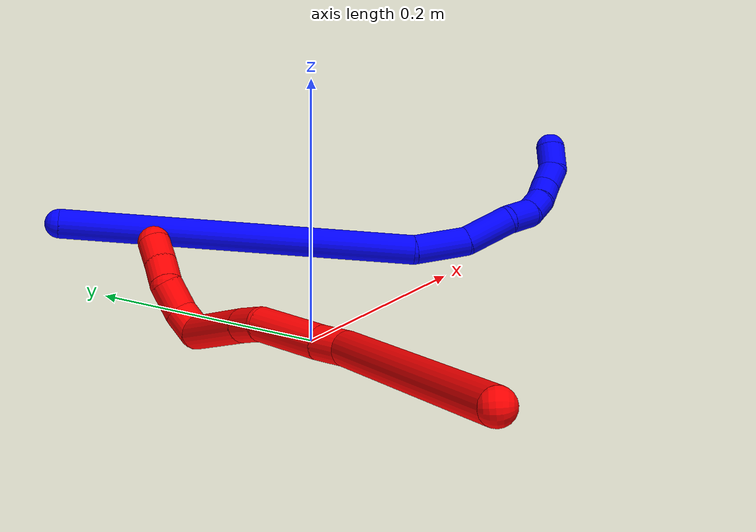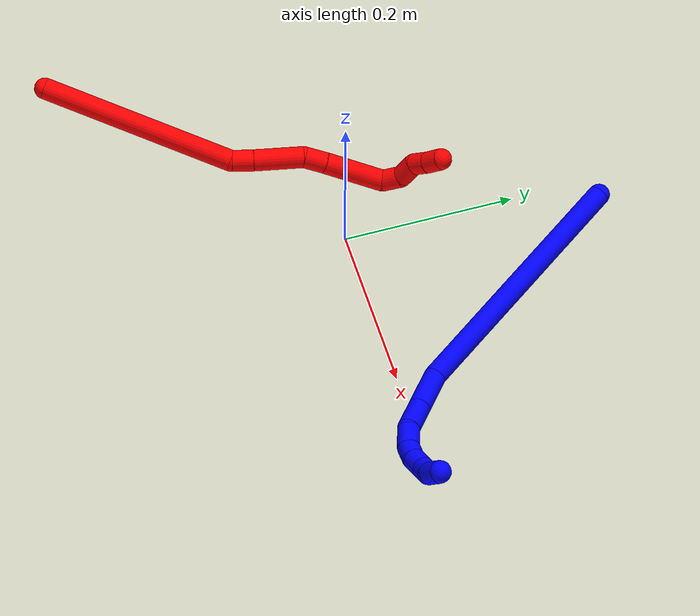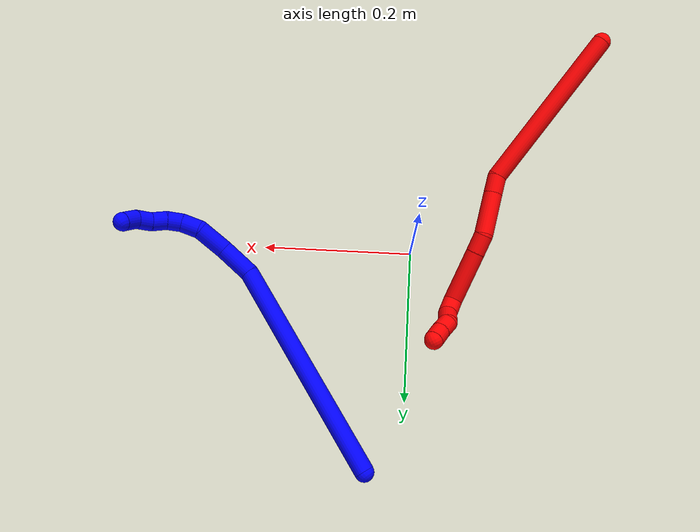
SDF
<sdf version="1.7">
 <world name="default">
  <plugin name="TubeGeneratorPlugin" filename="libtube_generator_plugin.so"/>
  <model name="photoneo_s_sensor">
   <static>1</static>
   <pose>0 0 2 1.57079 1.57079 3.14159</pose>
   <link name="link">
    <inertial><mass>0.1</mass></inertial>
    <sensor name="sensor" type="depth">
     <update_rate>30</update_rate>
     <camera>
      <horizontal_fov>1.22</horizontal_fov>
      <image><width>1920</width><height>1200</height><format>B8G8R8</format></image>
      <clip><near>0.1</near><far>4</far></clip>
      <depth_camera><output>points</output></depth_camera>
     </camera>
     <plugin name="camera_plugin" filename="libgazebo_ros_depth_camera.so">
      <baseline>0.2</baseline>
      <alwaysOn>1</alwaysOn>
      <updateRate>0.0</updateRate>
      <cameraName>camera_ir</cameraName>
      <imageTopicName>/camera/color/image_raw</imageTopicName>
      <cameraInfoTopicName>/camera/color/camera_info</cameraInfoTopicName>
      <depthImageTopicName>/camera/depth/image_raw</depthImageTopicName>
      <depthImageCameraInfoTopicName>/camera/depth/camera_info</depthImageCameraInfoTopicName>
      <pointCloudTopicName>/camera/depth/points</pointCloudTopicName>
      <frameName>fr_optical</frameName>
      <pointCloudCutoff>0.1</pointCloudCutoff>
      <pointCloudCutoffMax>2.0</pointCloudCutoffMax>
      <distortionK1>0</distortionK1>
      <distortionK2>0</distortionK2>
      <distortionK3>0</distortionK3>
      <distortionT1>0</distortionT1>
      <distortionT2>0</distortionT2>
      <CxPrime>0</CxPrime>
      <Cx>0</Cx>
      <Cy>0</Cy>
      <focalLength>0</focalLength>
      <hackBaseline>0</hackBaseline>
     </plugin>
    </sensor>
   </link>
  </model>
  <gravity>0 0 -9.8</gravity>
  <magnetic_field>6e-06 2.3e-05 -4.2e-05</magnetic_field>
  <atmosphere type="adiabatic"/>
  <physics name="default_physics" default="0" type="ode">
   <max_step_size>0.003</max_step_size>
   <real_time_factor>1</real_time_factor>
   <real_time_update_rate>1000</real_time_update_rate>
   <max_contacts>10000</max_contacts>
   <ode>
    <solver>
     <type>quick</type>
     <iters>100</iters>
     <sor>1.3</sor>
     <use_dynamic_moi_rescaling>0</use_dynamic_moi_rescaling>
    </solver>
    <constraints>
     <contact_max_correcting_vel>0</contact_max_correcting_vel>
     <contact_surface_layer>0.001</contact_surface_layer>
     <cfm>0</cfm>
     <erp>0.2</erp>
    </constraints>
   </ode>
  </physics>
  <scene><ambient>0.4 0.4 0.4 1</ambient><background>0.7 0.7 0.7 1</background><shadows>0</shadows></scene>
  <audio><device>default</device></audio>
  <spherical_coordinates>
   <surface_model>EARTH_WGS84</surface_model>
   <latitude_deg>0</latitude_deg>
   <longitude_deg>0</longitude_deg>
   <elevation>0</elevation>
   <heading_deg>0</heading_deg>
  </spherical_coordinates>
  <model name="bin">
   <static>1</static>
   <link name="bottom">
    <collision name="collision-bottom">
     <pose>0 0 -0.01 0 -0 0</pose>
     <geometry><box><size>0.8 0.6 0.02</size></box></geometry>
     <surface>
      <friction><ode><mu>100</mu><mu2>100</mu2></ode></friction>
      <contact><collide_bitmask>65535</collide_bitmask></contact>
     </surface>
    </collision>
   </link>
   <link name="west_wall">
    <collision name="collision-west_wall">
     <pose>-0.41 0 0.1 0 -0 0</pose>
     <geometry><box><size>0.02 0.6 0.2</size></box></geometry>
     <surface>
      <friction><ode><mu>100</mu><mu2>100</mu2></ode></friction>
      <contact><collide_bitmask>65535</collide_bitmask></contact>
     </surface>
    </collision>
   </link>
   <link name="east_wall">
    <collision name="collision-east_wall">
     <pose>0.41 0 0.1 0 -0 0</pose>
     <geometry><box><size>0.02 0.6 0.2</size></box></geometry>
     <surface>
      <friction><ode><mu>100</mu><mu2>100</mu2></ode></friction>
      <contact><collide_bitmask>65535</collide_bitmask></contact>
     </surface>
    </collision>
   </link>
   <link name="south_wall">
    <collision name="collision-south_wall">
     <pose>0 -0.31 0.1 0 -0 0</pose>
     <geometry><box><size>0.8 0.02 0.2</size></box></geometry>
     <surface>
      <friction><ode><mu>100</mu><mu2>100</mu2></ode></friction>
      <contact><collide_bitmask>65535</collide_bitmask></contact>
     </surface>
    </collision>
   </link>
   <link name="north_wall">
    <collision name="collision-north_wall">
     <pose>0 0.31 0.1 0 -0 0</pose>
     <geometry><box><size>0.8 0.02 0.2</size></box></geometry>
     <surface>
      <friction><ode><mu>100</mu><mu2>100</mu2></ode></friction>
      <contact><collide_bitmask>65535</collide_bitmask></contact>
     </surface>
    </collision>
   </link>
  </model>
  <model name="1">
   <static>0</static>
   <link name="1">
    <collision name="collision-cylinder-e_1_1_4">
     <pose>0.022875 -0.004551 0.149012 0.030534 0.152254 0.002329</pose>
     <geometry><cylinder><radius>0.0125</radius><length>0.301653</length></cylinder></geometry>
     <surface>
      <friction><ode><mu>1.16</mu><mu2>1.16</mu2><slip1>0</slip1><slip2>0</slip2></ode></friction>
      <contact><ode><kp>1e+06</kp><kd>1</kd><max_vel>0</max_vel><min_depth>0.001</min_depth></ode></contact>
     </surface>
    </collision>
    <visual name="visual-cylinder-e_1_1_4">
     <pose>0.022875 -0.004551 0.149012 0.030534 0.152254 0.002329</pose>
     <geometry><cylinder><radius>0.0125</radius><length>0.301653</length></cylinder></geometry>
     <material><ambient>0 0 1 1</ambient></material>
    </visual>
    <collision name="collision-cylinder-e_2_4_5">
     <pose>0.046559 -0.017007 0.320448 0.338899 0.034003 0.005818</pose>
     <geometry><cylinder><radius>0.0125</radius><length>0.047581</length></cylinder></geometry>
     <surface>
      <friction><ode><mu>1.16</mu><mu2>1.16</mu2><slip1>0</slip1><slip2>0</slip2></ode></friction>
      <contact><ode><kp>1e+06</kp><kd>1</kd><max_vel>0</max_vel><min_depth>0.001</min_depth></ode></contact>
     </surface>
    </collision>
    <visual name="visual-cylinder-e_2_4_5">
     <pose>0.046559 -0.017007 0.320448 0.338899 0.034003 0.005818</pose>
     <geometry><cylinder><radius>0.0125</radius><length>0.047581</length></cylinder></geometry>
     <material><ambient>0 0 1 1</ambient></material>
    </visual>
    <collision name="collision-cylinder-e_3_5_6">
     <pose>0.050769 -0.036777 0.359879 0.609169 0.162558 0.051204</pose>
     <geometry><cylinder><radius>0.0125</radius><length>0.042026</length></cylinder></geometry>
     <surface>
      <friction><ode><mu>1.16</mu><mu2>1.16</mu2><slip1>0</slip1><slip2>0</slip2></ode></friction>
      <contact><ode><kp>1e+06</kp><kd>1</kd><max_vel>0</max_vel><min_depth>0.001</min_depth></ode></contact>
     </surface>
    </collision>
    <visual name="visual-cylinder-e_3_5_6">
     <pose>0.050769 -0.036777 0.359879 0.609169 0.162558 0.051204</pose>
     <geometry><cylinder><radius>0.0125</radius><length>0.042026</length></cylinder></geometry>
     <material><ambient>0 0 1 1</ambient></material>
    </visual>
    <collision name="collision-cylinder-e_4_6_7">
     <pose>0.050803 -0.055544 0.387421 0.579934 -0.261219 -0.078348</pose>
     <geometry><cylinder><radius>0.0125</radius><length>0.026076</length></cylinder></geometry>
     <surface>
      <friction><ode><mu>1.16</mu><mu2>1.16</mu2><slip1>0</slip1><slip2>0</slip2></ode></friction>
      <contact><ode><kp>1e+06</kp><kd>1</kd><max_vel>0</max_vel><min_depth>0.001</min_depth></ode></contact>
     </surface>
    </collision>
    <visual name="visual-cylinder-e_4_6_7">
     <pose>0.050803 -0.055544 0.387421 0.579934 -0.261219 -0.078348</pose>
     <geometry><cylinder><radius>0.0125</radius><length>0.026076</length></cylinder></geometry>
     <material><ambient>0 0 1 1</ambient></material>
    </visual>
    <collision name="collision-cylinder-e_5_7_8">
     <pose>0.045085 -0.070652 0.403243 0.998613 -0.236307 -0.129305</pose>
     <geometry><cylinder><radius>0.0125</radius><length>0.02008</length></cylinder></geometry>
     <surface>
      <friction><ode><mu>1.16</mu><mu2>1.16</mu2><slip1>0</slip1><slip2>0</slip2></ode></friction>
      <contact><ode><kp>1e+06</kp><kd>1</kd><max_vel>0</max_vel><min_depth>0.001</min_depth></ode></contact>
     </surface>
    </collision>
    <visual name="visual-cylinder-e_5_7_8">
     <pose>0.045085 -0.070652 0.403243 0.998613 -0.236307 -0.129305</pose>
     <geometry><cylinder><radius>0.0125</radius><length>0.02008</length></cylinder></geometry>
     <material><ambient>0 0 1 1</ambient></material>
    </visual>
    <collision name="collision-cylinder-e_6_8_9">
     <pose>0.039168 -0.087905 0.411668 1.23674 -0.356486 -0.254952</pose>
     <geometry><cylinder><radius>0.0125</radius><length>0.020438</length></cylinder></geometry>
     <surface>
      <friction><ode><mu>1.16</mu><mu2>1.16</mu2><slip1>0</slip1><slip2>0</slip2></ode></friction>
      <contact><ode><kp>1e+06</kp><kd>1</kd><max_vel>0</max_vel><min_depth>0.001</min_depth></ode></contact>
     </surface>
    </collision>
    <visual name="visual-cylinder-e_6_8_9">
     <pose>0.039168 -0.087905 0.411668 1.23674 -0.356486 -0.254952</pose>
     <geometry><cylinder><radius>0.0125</radius><length>0.020438</length></cylinder></geometry>
     <material><ambient>0 0 1 1</ambient></material>
    </visual>
    <collision name="collision-cylinder-e_7_9_10">
     <pose>0.035431 -0.106722 0.418183 1.23814 -0.016588 -0.011819</pose>
     <geometry><cylinder><radius>0.0125</radius><length>0.020676</length></cylinder></geometry>
     <surface>
      <friction><ode><mu>1.16</mu><mu2>1.16</mu2><slip1>0</slip1><slip2>0</slip2></ode></friction>
      <contact><ode><kp>1e+06</kp><kd>1</kd><max_vel>0</max_vel><min_depth>0.001</min_depth></ode></contact>
     </surface>
    </collision>
    <visual name="visual-cylinder-e_7_9_10">
     <pose>0.035431 -0.106722 0.418183 1.23814 -0.016588 -0.011819</pose>
     <geometry><cylinder><radius>0.0125</radius><length>0.020676</length></cylinder></geometry>
     <material><ambient>0 0 1 1</ambient></material>
    </visual>
    <collision name="collision-cylinder-e_8_10_2">
     <pose>0.035283 -0.127132 0.420135 1.70378 0.002193 0.002506</pose>
     <geometry><cylinder><radius>0.0125</radius><length>0.021471</length></cylinder></geometry>
     <surface>
      <friction><ode><mu>1.16</mu><mu2>1.16</mu2><slip1>0</slip1><slip2>0</slip2></ode></friction>
      <contact><ode><kp>1e+06</kp><kd>1</kd><max_vel>0</max_vel><min_depth>0.001</min_depth></ode></contact>
     </surface>
    </collision>
    <visual name="visual-cylinder-e_8_10_2">
     <pose>0.035283 -0.127132 0.420135 1.70378 0.002193 0.002506</pose>
     <geometry><cylinder><radius>0.0125</radius><length>0.021471</length></cylinder></geometry>
     <material><ambient>0 0 1 1</ambient></material>
    </visual>
    <collision name="collision-sphere-2">
     <pose>0.035306 -0.137773 0.418712 0 -0 0</pose>
     <geometry><sphere><radius>0.0125</radius></sphere></geometry>
     <surface>
      <friction><ode><mu>1.16</mu><mu2>1.16</mu2><slip1>0</slip1><slip2>0</slip2></ode></friction>
      <contact><ode><kp>1e+06</kp><kd>1</kd><max_vel>0</max_vel><min_depth>0.001</min_depth></ode></contact>
     </surface>
    </collision>
    <visual name="visual-sphere-2">
     <pose>0.035306 -0.137773 0.418712 0 -0 0</pose>
     <geometry><sphere><radius>0.0125</radius></sphere></geometry>
     <material><ambient>0 0 1 1</ambient></material>
    </visual>
    <collision name="collision-sphere-10">
     <pose>0.035259 -0.116492 0.421559 0 -0 0</pose>
     <geometry><sphere><radius>0.0125</radius></sphere></geometry>
     <surface>
      <friction><ode><mu>1.16</mu><mu2>1.16</mu2><slip1>0</slip1><slip2>0</slip2></ode></friction>
      <contact><ode><kp>1e+06</kp><kd>1</kd><max_vel>0</max_vel><min_depth>0.001</min_depth></ode></contact>
     </surface>
    </collision>
    <visual name="visual-sphere-10">
     <pose>0.035259 -0.116492 0.421559 0 -0 0</pose>
     <geometry><sphere><radius>0.0125</radius></sphere></geometry>
     <material><ambient>0 0 1 1</ambient></material>
    </visual>
    <collision name="collision-sphere-9">
     <pose>0.035602 -0.096952 0.414808 0 -0 0</pose>
     <geometry><sphere><radius>0.0125</radius></sphere></geometry>
     <surface>
      <friction><ode><mu>1.16</mu><mu2>1.16</mu2><slip1>0</slip1><slip2>0</slip2></ode></friction>
      <contact><ode><kp>1e+06</kp><kd>1</kd><max_vel>0</max_vel><min_depth>0.001</min_depth></ode></contact>
     </surface>
    </collision>
    <visual name="visual-sphere-9">
     <pose>0.035602 -0.096952 0.414808 0 -0 0</pose>
     <geometry><sphere><radius>0.0125</radius></sphere></geometry>
     <material><ambient>0 0 1 1</ambient></material>
    </visual>
    <collision name="collision-sphere-4">
     <pose>0.045751 -0.009103 0.298024 0 -0 0</pose>
     <geometry><sphere><radius>0.0125</radius></sphere></geometry>
     <surface>
      <friction><ode><mu>1.16</mu><mu2>1.16</mu2><slip1>0</slip1><slip2>0</slip2></ode></friction>
      <contact><ode><kp>1e+06</kp><kd>1</kd><max_vel>0</max_vel><min_depth>0.001</min_depth></ode></contact>
     </surface>
    </collision>
    <visual name="visual-sphere-4">
     <pose>0.045751 -0.009103 0.298024 0 -0 0</pose>
     <geometry><sphere><radius>0.0125</radius></sphere></geometry>
     <material><ambient>0 0 1 1</ambient></material>
    </visual>
    <collision name="collision-sphere-1">
     <geometry><sphere><radius>0.0125</radius></sphere></geometry>
     <surface>
      <friction><ode><mu>1.16</mu><mu2>1.16</mu2><slip1>0</slip1><slip2>0</slip2></ode></friction>
      <contact><ode><kp>1e+06</kp><kd>1</kd><max_vel>0</max_vel><min_depth>0.001</min_depth></ode></contact>
     </surface>
    </collision>
    <visual name="visual-sphere-1">
     <geometry><sphere><radius>0.0125</radius></sphere></geometry>
     <material><ambient>0 0 1 1</ambient></material>
    </visual>
    <collision name="collision-sphere-8">
     <pose>0.042735 -0.078858 0.408528 0 -0 0</pose>
     <geometry><sphere><radius>0.0125</radius></sphere></geometry>
     <surface>
      <friction><ode><mu>1.16</mu><mu2>1.16</mu2><slip1>0</slip1><slip2>0</slip2></ode></friction>
      <contact><ode><kp>1e+06</kp><kd>1</kd><max_vel>0</max_vel><min_depth>0.001</min_depth></ode></contact>
     </surface>
    </collision>
    <visual name="visual-sphere-8">
     <pose>0.042735 -0.078858 0.408528 0 -0 0</pose>
     <geometry><sphere><radius>0.0125</radius></sphere></geometry>
     <material><ambient>0 0 1 1</ambient></material>
    </visual>
    <collision name="collision-sphere-5">
     <pose>0.047368 -0.024912 0.342872 0 -0 0</pose>
     <geometry><sphere><radius>0.0125</radius></sphere></geometry>
     <surface>
      <friction><ode><mu>1.16</mu><mu2>1.16</mu2><slip1>0</slip1><slip2>0</slip2></ode></friction>
      <contact><ode><kp>1e+06</kp><kd>1</kd><max_vel>0</max_vel><min_depth>0.001</min_depth></ode></contact>
     </surface>
    </collision>
    <visual name="visual-sphere-5">
     <pose>0.047368 -0.024912 0.342872 0 -0 0</pose>
     <geometry><sphere><radius>0.0125</radius></sphere></geometry>
     <material><ambient>0 0 1 1</ambient></material>
    </visual>
    <collision name="collision-sphere-6">
     <pose>0.05417 -0.048642 0.376885 0 -0 0</pose>
     <geometry><sphere><radius>0.0125</radius></sphere></geometry>
     <surface>
      <friction><ode><mu>1.16</mu><mu2>1.16</mu2><slip1>0</slip1><slip2>0</slip2></ode></friction>
      <contact><ode><kp>1e+06</kp><kd>1</kd><max_vel>0</max_vel><min_depth>0.001</min_depth></ode></contact>
     </surface>
    </collision>
    <visual name="visual-sphere-6">
     <pose>0.05417 -0.048642 0.376885 0 -0 0</pose>
     <geometry><sphere><radius>0.0125</radius></sphere></geometry>
     <material><ambient>0 0 1 1</ambient></material>
    </visual>
    <collision name="collision-sphere-7">
     <pose>0.047436 -0.062446 0.397958 0 -0 0</pose>
     <geometry><sphere><radius>0.0125</radius></sphere></geometry>
     <surface>
      <friction><ode><mu>1.16</mu><mu2>1.16</mu2><slip1>0</slip1><slip2>0</slip2></ode></friction>
      <contact><ode><kp>1e+06</kp><kd>1</kd><max_vel>0</max_vel><min_depth>0.001</min_depth></ode></contact>
     </surface>
    </collision>
    <visual name="visual-sphere-7">
     <pose>0.047436 -0.062446 0.397958 0 -0 0</pose>
     <geometry><sphere><radius>0.0125</radius></sphere></geometry>
     <material><ambient>0 0 1 1</ambient></material>
    </visual>
    <inertial>
     <pose>0.03154 -0.026655 0.239203 0 -0 0</pose>
     <mass>0.5</mass>
     <inertia>
      <ixx>0.002307</ixx>
      <ixy>0</ixy>
      <ixz>0</ixz>
      <iyy>0.002313</iyy>
      <iyz>0</iyz>
      <izz>-0.000232</izz>
     </inertia>
    </inertial>
   </link>
   <pose>0.047559 0.288502 0.035997 -1.83698 -0.699103 -2.27717</pose>
  </model>
  <model name="2">
   <static>0</static>
   <link name="2">
    <collision name="collision-cylinder-e_1_1_4">
     <pose>0.048875 0.090935 -0.051813 -2.0887 0.436893 -0.729751</pose>
     <geometry><cylinder><radius>0.0125</radius><length>0.231019</length></cylinder></geometry>
     <surface>
      <friction><ode><mu>1.16</mu><mu2>1.16</mu2><slip1>0</slip1><slip2>0</slip2></ode></friction>
      <contact><ode><kp>1e+06</kp><kd>1</kd><max_vel>0</max_vel><min_depth>0.001</min_depth></ode></contact>
     </surface>
    </collision>
    <visual name="visual-cylinder-e_1_1_4">
     <pose>0.048875 0.090935 -0.051813 -2.0887 0.436893 -0.729751</pose>
     <geometry><cylinder><radius>0.0125</radius><length>0.231019</length></cylinder></geometry>
     <material><ambient>1 0 0 1</ambient></material>
    </visual>
    <collision name="collision-cylinder-e_2_4_5">
     <pose>0.100491 0.189483 -0.113364 -2.47803 0.218173 -0.615591</pose>
     <geometry><cylinder><radius>0.0125</radius><length>0.025322</length></cylinder></geometry>
     <surface>
      <friction><ode><mu>1.16</mu><mu2>1.16</mu2><slip1>0</slip1><slip2>0</slip2></ode></friction>
      <contact><ode><kp>1e+06</kp><kd>1</kd><max_vel>0</max_vel><min_depth>0.001</min_depth></ode></contact>
     </surface>
    </collision>
    <visual name="visual-cylinder-e_2_4_5">
     <pose>0.100491 0.189483 -0.113364 -2.47803 0.218173 -0.615591</pose>
     <geometry><cylinder><radius>0.0125</radius><length>0.025322</length></cylinder></geometry>
     <material><ambient>1 0 0 1</ambient></material>
    </visual>
    <collision name="collision-cylinder-e_3_5_6">
     <pose>0.107824 0.215211 -0.145572 -2.46311 0.157804 -0.440836</pose>
     <geometry><cylinder><radius>0.0125</radius><length>0.058452</length></cylinder></geometry>
     <surface>
      <friction><ode><mu>1.16</mu><mu2>1.16</mu2><slip1>0</slip1><slip2>0</slip2></ode></friction>
      <contact><ode><kp>1e+06</kp><kd>1</kd><max_vel>0</max_vel><min_depth>0.001</min_depth></ode></contact>
     </surface>
    </collision>
    <visual name="visual-cylinder-e_3_5_6">
     <pose>0.107824 0.215211 -0.145572 -2.46311 0.157804 -0.440836</pose>
     <geometry><cylinder><radius>0.0125</radius><length>0.058452</length></cylinder></geometry>
     <material><ambient>1 0 0 1</ambient></material>
    </visual>
    <collision name="collision-cylinder-e_4_6_7">
     <pose>0.118595 0.241205 -0.176163 -2.37123 0.499798 -1.12371</pose>
     <geometry><cylinder><radius>0.0125</radius><length>0.025783</length></cylinder></geometry>
     <surface>
      <friction><ode><mu>1.16</mu><mu2>1.16</mu2><slip1>0</slip1><slip2>0</slip2></ode></friction>
      <contact><ode><kp>1e+06</kp><kd>1</kd><max_vel>0</max_vel><min_depth>0.001</min_depth></ode></contact>
     </surface>
    </collision>
    <visual name="visual-cylinder-e_4_6_7">
     <pose>0.118595 0.241205 -0.176163 -2.37123 0.499798 -1.12371</pose>
     <geometry><cylinder><radius>0.0125</radius><length>0.025783</length></cylinder></geometry>
     <material><ambient>1 0 0 1</ambient></material>
    </visual>
    <collision name="collision-cylinder-e_5_7_8">
     <pose>0.143115 0.270148 -0.206386 -2.38026 0.540943 -1.21181</pose>
     <geometry><cylinder><radius>0.0125</radius><length>0.071237</length></cylinder></geometry>
     <surface>
      <friction><ode><mu>1.16</mu><mu2>1.16</mu2><slip1>0</slip1><slip2>0</slip2></ode></friction>
      <contact><ode><kp>1e+06</kp><kd>1</kd><max_vel>0</max_vel><min_depth>0.001</min_depth></ode></contact>
     </surface>
    </collision>
    <visual name="visual-cylinder-e_5_7_8">
     <pose>0.143115 0.270148 -0.206386 -2.38026 0.540943 -1.21181</pose>
     <geometry><cylinder><radius>0.0125</radius><length>0.071237</length></cylinder></geometry>
     <material><ambient>1 0 0 1</ambient></material>
    </visual>
    <collision name="collision-cylinder-e_6_8_9">
     <pose>0.158991 0.300504 -0.234831 -2.16968 -0.2157 0.404353</pose>
     <geometry><cylinder><radius>0.0125</radius><length>0.023032</length></cylinder></geometry>
     <surface>
      <friction><ode><mu>1.16</mu><mu2>1.16</mu2><slip1>0</slip1><slip2>0</slip2></ode></friction>
      <contact><ode><kp>1e+06</kp><kd>1</kd><max_vel>0</max_vel><min_depth>0.001</min_depth></ode></contact>
     </surface>
    </collision>
    <visual name="visual-cylinder-e_6_8_9">
     <pose>0.158991 0.300504 -0.234831 -2.16968 -0.2157 0.404353</pose>
     <geometry><cylinder><radius>0.0125</radius><length>0.023032</length></cylinder></geometry>
     <material><ambient>1 0 0 1</ambient></material>
    </visual>
    <collision name="collision-cylinder-e_7_9_10">
     <pose>0.148061 0.317233 -0.246509 -2.19317 -0.746355 1.30328</pose>
     <geometry><cylinder><radius>0.0125</radius><length>0.024938</length></cylinder></geometry>
     <surface>
      <friction><ode><mu>1.16</mu><mu2>1.16</mu2><slip1>0</slip1><slip2>0</slip2></ode></friction>
      <contact><ode><kp>1e+06</kp><kd>1</kd><max_vel>0</max_vel><min_depth>0.001</min_depth></ode></contact>
     </surface>
    </collision>
    <visual name="visual-cylinder-e_7_9_10">
     <pose>0.148061 0.317233 -0.246509 -2.19317 -0.746355 1.30328</pose>
     <geometry><cylinder><radius>0.0125</radius><length>0.024938</length></cylinder></geometry>
     <material><ambient>1 0 0 1</ambient></material>
    </visual>
    <collision name="collision-cylinder-e_8_10_11">
     <pose>0.136541 0.33381 -0.254528 -1.85628 -0.310242 0.41182</pose>
     <geometry><cylinder><radius>0.0125</radius><length>0.020005</length></cylinder></geometry>
     <surface>
      <friction><ode><mu>1.16</mu><mu2>1.16</mu2><slip1>0</slip1><slip2>0</slip2></ode></friction>
      <contact><ode><kp>1e+06</kp><kd>1</kd><max_vel>0</max_vel><min_depth>0.001</min_depth></ode></contact>
     </surface>
    </collision>
    <visual name="visual-cylinder-e_8_10_11">
     <pose>0.136541 0.33381 -0.254528 -1.85628 -0.310242 0.41182</pose>
     <geometry><cylinder><radius>0.0125</radius><length>0.020005</length></cylinder></geometry>
     <material><ambient>1 0 0 1</ambient></material>
    </visual>
    <collision name="collision-cylinder-e_9_11_2">
     <pose>0.129689 0.351805 -0.260258 -1.9023 -0.385344 0.533901</pose>
     <geometry><cylinder><radius>0.0125</radius><length>0.020212</length></cylinder></geometry>
     <surface>
      <friction><ode><mu>1.16</mu><mu2>1.16</mu2><slip1>0</slip1><slip2>0</slip2></ode></friction>
      <contact><ode><kp>1e+06</kp><kd>1</kd><max_vel>0</max_vel><min_depth>0.001</min_depth></ode></contact>
     </surface>
    </collision>
    <visual name="visual-cylinder-e_9_11_2">
     <pose>0.129689 0.351805 -0.260258 -1.9023 -0.385344 0.533901</pose>
     <geometry><cylinder><radius>0.0125</radius><length>0.020212</length></cylinder></geometry>
     <material><ambient>1 0 0 1</ambient></material>
    </visual>
    <collision name="collision-sphere-2">
     <pose>0.12589 0.36066 -0.263306 0 -0 0</pose>
     <geometry><sphere><radius>0.0125</radius></sphere></geometry>
     <surface>
      <friction><ode><mu>1.16</mu><mu2>1.16</mu2><slip1>0</slip1><slip2>0</slip2></ode></friction>
      <contact><ode><kp>1e+06</kp><kd>1</kd><max_vel>0</max_vel><min_depth>0.001</min_depth></ode></contact>
     </surface>
    </collision>
    <visual name="visual-sphere-2">
     <pose>0.12589 0.36066 -0.263306 0 -0 0</pose>
     <geometry><sphere><radius>0.0125</radius></sphere></geometry>
     <material><ambient>1 0 0 1</ambient></material>
    </visual>
    <collision name="collision-sphere-11">
     <pose>0.133487 0.34295 -0.25721 0 -0 0</pose>
     <geometry><sphere><radius>0.0125</radius></sphere></geometry>
     <surface>
      <friction><ode><mu>1.16</mu><mu2>1.16</mu2><slip1>0</slip1><slip2>0</slip2></ode></friction>
      <contact><ode><kp>1e+06</kp><kd>1</kd><max_vel>0</max_vel><min_depth>0.001</min_depth></ode></contact>
     </surface>
    </collision>
    <visual name="visual-sphere-11">
     <pose>0.133487 0.34295 -0.25721 0 -0 0</pose>
     <geometry><sphere><radius>0.0125</radius></sphere></geometry>
     <material><ambient>1 0 0 1</ambient></material>
    </visual>
    <collision name="collision-sphere-10">
     <pose>0.139595 0.324671 -0.251845 0 -0 0</pose>
     <geometry><sphere><radius>0.0125</radius></sphere></geometry>
     <surface>
      <friction><ode><mu>1.16</mu><mu2>1.16</mu2><slip1>0</slip1><slip2>0</slip2></ode></friction>
      <contact><ode><kp>1e+06</kp><kd>1</kd><max_vel>0</max_vel><min_depth>0.001</min_depth></ode></contact>
     </surface>
    </collision>
    <visual name="visual-sphere-10">
     <pose>0.139595 0.324671 -0.251845 0 -0 0</pose>
     <geometry><sphere><radius>0.0125</radius></sphere></geometry>
     <material><ambient>1 0 0 1</ambient></material>
    </visual>
    <collision name="collision-sphere-9">
     <pose>0.156527 0.309795 -0.241172 0 -0 0</pose>
     <geometry><sphere><radius>0.0125</radius></sphere></geometry>
     <surface>
      <friction><ode><mu>1.16</mu><mu2>1.16</mu2><slip1>0</slip1><slip2>0</slip2></ode></friction>
      <contact><ode><kp>1e+06</kp><kd>1</kd><max_vel>0</max_vel><min_depth>0.001</min_depth></ode></contact>
     </surface>
    </collision>
    <visual name="visual-sphere-9">
     <pose>0.156527 0.309795 -0.241172 0 -0 0</pose>
     <geometry><sphere><radius>0.0125</radius></sphere></geometry>
     <material><ambient>1 0 0 1</ambient></material>
    </visual>
    <collision name="collision-sphere-4">
     <pose>0.09775 0.181869 -0.103626 0 -0 0</pose>
     <geometry><sphere><radius>0.0125</radius></sphere></geometry>
     <surface>
      <friction><ode><mu>1.16</mu><mu2>1.16</mu2><slip1>0</slip1><slip2>0</slip2></ode></friction>
      <contact><ode><kp>1e+06</kp><kd>1</kd><max_vel>0</max_vel><min_depth>0.001</min_depth></ode></contact>
     </surface>
    </collision>
    <visual name="visual-sphere-4">
     <pose>0.09775 0.181869 -0.103626 0 -0 0</pose>
     <geometry><sphere><radius>0.0125</radius></sphere></geometry>
     <material><ambient>1 0 0 1</ambient></material>
    </visual>
    <collision name="collision-sphere-1">
     <geometry><sphere><radius>0.0125</radius></sphere></geometry>
     <surface>
      <friction><ode><mu>1.16</mu><mu2>1.16</mu2><slip1>0</slip1><slip2>0</slip2></ode></friction>
      <contact><ode><kp>1e+06</kp><kd>1</kd><max_vel>0</max_vel><min_depth>0.001</min_depth></ode></contact>
     </surface>
    </collision>
    <visual name="visual-sphere-1">
     <geometry><sphere><radius>0.0125</radius></sphere></geometry>
     <material><ambient>1 0 0 1</ambient></material>
    </visual>
    <collision name="collision-sphere-8">
     <pose>0.161456 0.291213 -0.228489 0 -0 0</pose>
     <geometry><sphere><radius>0.0125</radius></sphere></geometry>
     <surface>
      <friction><ode><mu>1.16</mu><mu2>1.16</mu2><slip1>0</slip1><slip2>0</slip2></ode></friction>
      <contact><ode><kp>1e+06</kp><kd>1</kd><max_vel>0</max_vel><min_depth>0.001</min_depth></ode></contact>
     </surface>
    </collision>
    <visual name="visual-sphere-8">
     <pose>0.161456 0.291213 -0.228489 0 -0 0</pose>
     <geometry><sphere><radius>0.0125</radius></sphere></geometry>
     <material><ambient>1 0 0 1</ambient></material>
    </visual>
    <collision name="collision-sphere-5">
     <pose>0.103231 0.197096 -0.123102 0 -0 0</pose>
     <geometry><sphere><radius>0.0125</radius></sphere></geometry>
     <surface>
      <friction><ode><mu>1.16</mu><mu2>1.16</mu2><slip1>0</slip1><slip2>0</slip2></ode></friction>
      <contact><ode><kp>1e+06</kp><kd>1</kd><max_vel>0</max_vel><min_depth>0.001</min_depth></ode></contact>
     </surface>
    </collision>
    <visual name="visual-sphere-5">
     <pose>0.103231 0.197096 -0.123102 0 -0 0</pose>
     <geometry><sphere><radius>0.0125</radius></sphere></geometry>
     <material><ambient>1 0 0 1</ambient></material>
    </visual>
    <collision name="collision-sphere-6">
     <pose>0.112417 0.233325 -0.168043 0 -0 0</pose>
     <geometry><sphere><radius>0.0125</radius></sphere></geometry>
     <surface>
      <friction><ode><mu>1.16</mu><mu2>1.16</mu2><slip1>0</slip1><slip2>0</slip2></ode></friction>
      <contact><ode><kp>1e+06</kp><kd>1</kd><max_vel>0</max_vel><min_depth>0.001</min_depth></ode></contact>
     </surface>
    </collision>
    <visual name="visual-sphere-6">
     <pose>0.112417 0.233325 -0.168043 0 -0 0</pose>
     <geometry><sphere><radius>0.0125</radius></sphere></geometry>
     <material><ambient>1 0 0 1</ambient></material>
    </visual>
    <collision name="collision-sphere-7">
     <pose>0.124773 0.249084 -0.184283 0 -0 0</pose>
     <geometry><sphere><radius>0.0125</radius></sphere></geometry>
     <surface>
      <friction><ode><mu>1.16</mu><mu2>1.16</mu2><slip1>0</slip1><slip2>0</slip2></ode></friction>
      <contact><ode><kp>1e+06</kp><kd>1</kd><max_vel>0</max_vel><min_depth>0.001</min_depth></ode></contact>
     </surface>
    </collision>
    <visual name="visual-sphere-7">
     <pose>0.124773 0.249084 -0.184283 0 -0 0</pose>
     <geometry><sphere><radius>0.0125</radius></sphere></geometry>
     <material><ambient>1 0 0 1</ambient></material>
    </visual>
    <inertial>
     <pose>0.092196 0.184939 -0.129004 0 -0 0</pose>
     <mass>0.5</mass>
     <inertia>
      <ixx>8.4e-05</ixx>
      <ixy>0</ixy>
      <ixz>0</ixz>
      <iyy>-0.000772</iyy>
      <iyz>0</iyz>
      <izz>-0.001333</izz>
     </inertia>
    </inertial>
   </link>
   <pose>-0.243715 -0.288502 0.086169 1.29742 1.21313 0.236075</pose>
  </model>
 </world>
</sdf>
